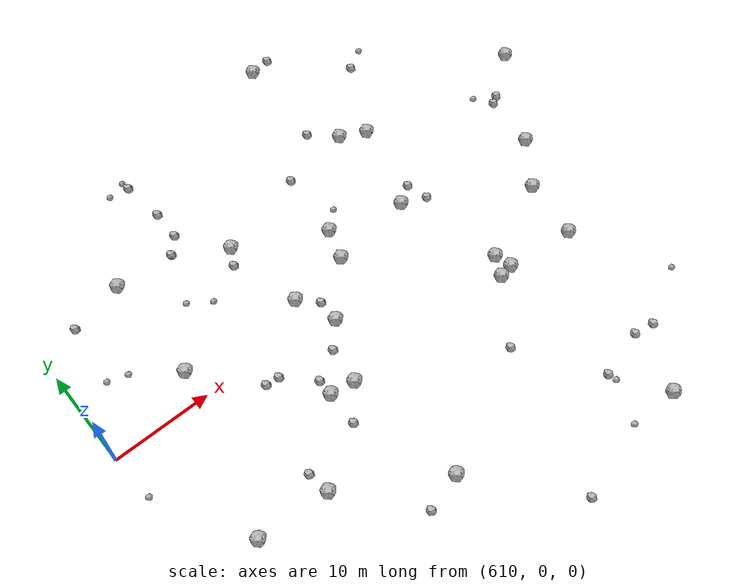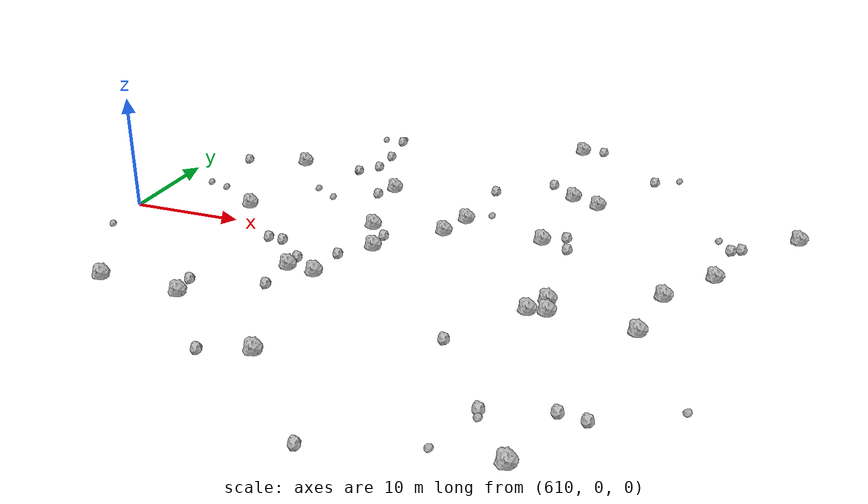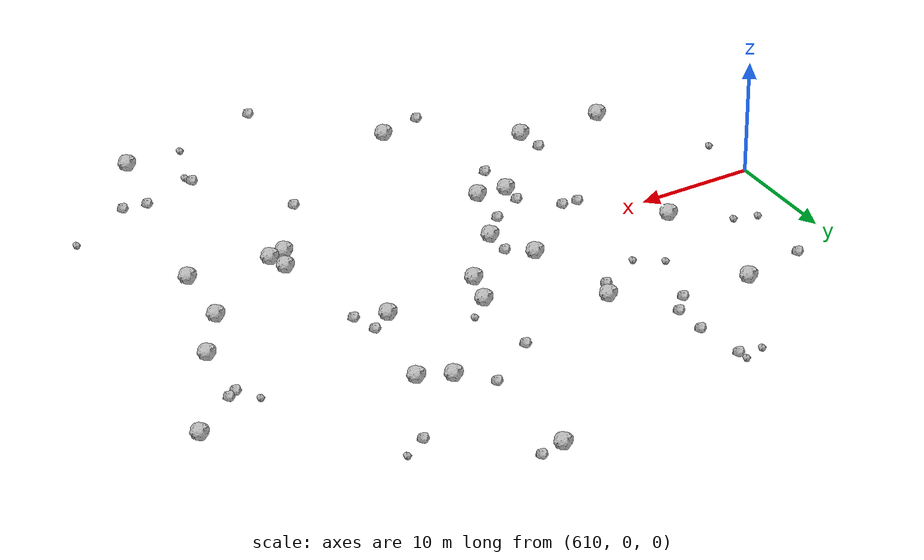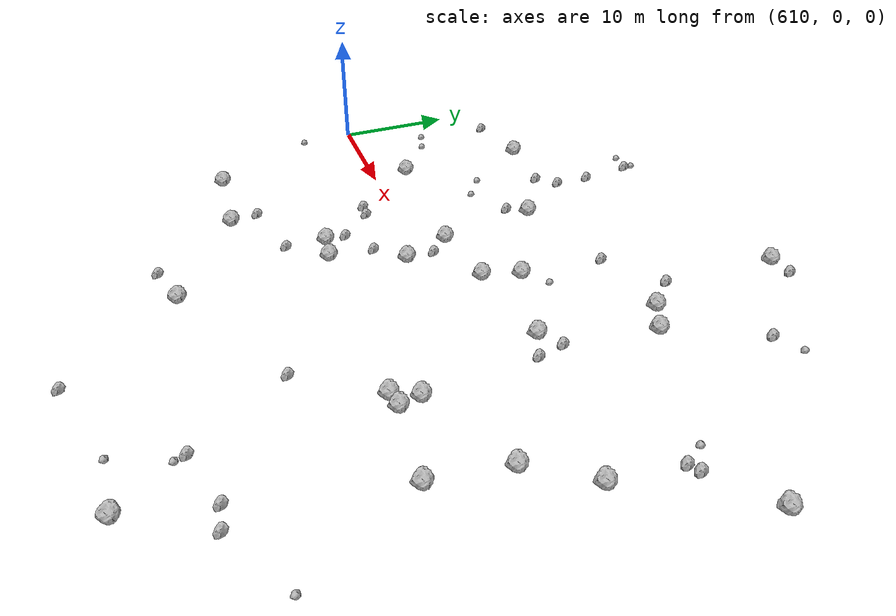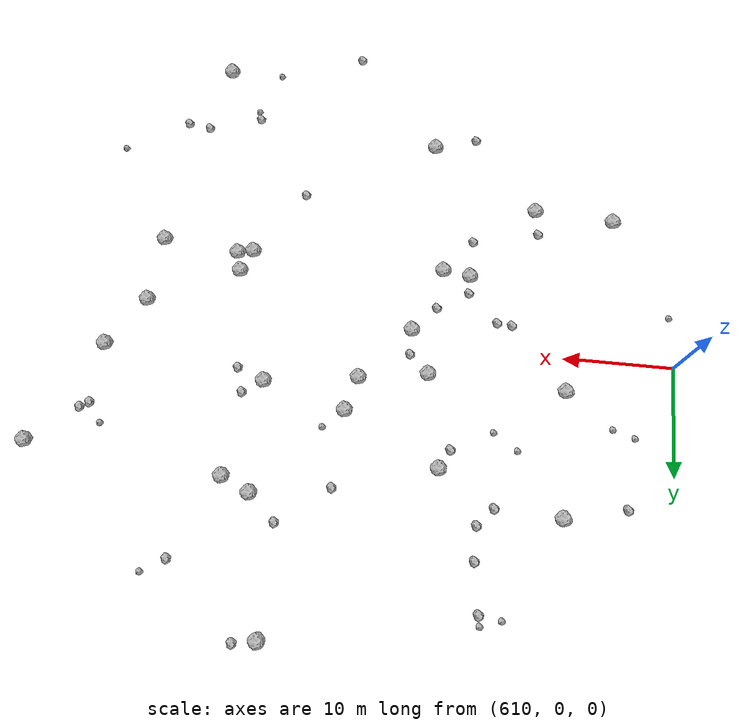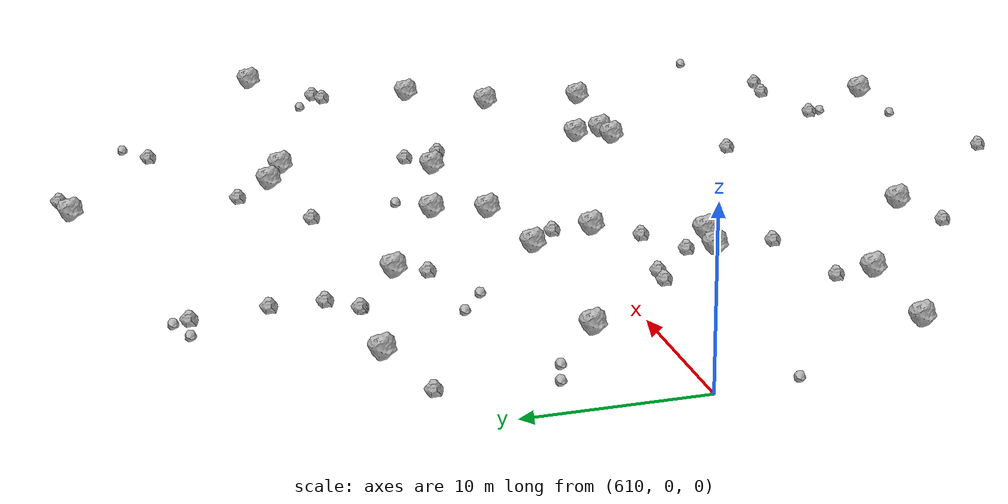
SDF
<sdf version="1.6">
 <world name="default">
  <include><uri>model://sun</uri></include>
  <model name="rock1_16_3">
   <include><uri>model://rock1</uri><pose>623.0338215678136 -14.136015884690957 0.5 0 0 0</pose></include>
  </model>
  <model name="rock1_16_4">
   <include><uri>model://rock1</uri><pose>650.4937964750682 -7.471354444372395 0.5 0 0 0</pose></include>
  </model>
  <model name="rock1_16_5">
   <include><uri>model://rock1</uri><pose>638.2456175181711 3.4544327840384597 0.5 0 0 0</pose></include>
  </model>
  <model name="rock1_16_6">
   <include><uri>model://rock1</uri><pose>661.3888281623242 2.4001621112177105 0.5 0 0 0</pose></include>
  </model>
  <model name="rock1_16_7">
   <include><uri>model://rock1</uri><pose>632.0456083960396 2.5756925605743533 0.5 0 0 0</pose></include>
  </model>
  <model name="rock1_16_8">
   <include><uri>model://rock1</uri><pose>619.6161174613522 14.33403416351058 0.5 0 0 0</pose></include>
  </model>
  <model name="rock1_16_9">
   <include><uri>model://rock1</uri><pose>615.7562683235511 -13.705546998408153 0.5 0 0 0</pose></include>
  </model>
  <model name="rock1_16_10">
   <include><uri>model://rock1</uri><pose>646.6682324697213 4.539323925893385 0.5 0 0 0</pose></include>
  </model>
  <model name="rock1_16_11">
   <include><uri>model://rock1</uri><pose>631.2893867720576 -7.429485246653414 0.5 0 0 0</pose></include>
  </model>
  <model name="rock1_16_12">
   <include><uri>model://rock1</uri><pose>650.0512383435115 -5.716809428722591 0.5 0 0 0</pose></include>
  </model>
  <model name="rock1_16_13">
   <include><uri>model://rock1</uri><pose>653.422399578715 -26.446879926752967 0.5 0 0 0</pose></include>
  </model>
  <model name="rock1_16_14">
   <include><uri>model://rock1</uri><pose>649.0583290089357 -7.744666688617844 0.5 0 0 0</pose></include>
  </model>
  <model name="rock1_16_15">
   <include><uri>model://rock1</uri><pose>657.4537446698811 -8.181294820619843 0.5 0 0 0</pose></include>
  </model>
  <model name="rock1_16_16">
   <include><uri>model://rock1</uri><pose>644.620239674446 26.674815669989613 0.5 0 0 0</pose></include>
  </model>
  <model name="rock1_16_17">
   <include><uri>model://rock1</uri><pose>658.1855339201877 -2.1362305233182184 0.5 0 0 0</pose></include>
  </model>
  <model name="rock1_16_18">
   <include><uri>model://rock1</uri><pose>639.1968923517832 6.542542912270193 0.5 0 0 0</pose></include>
  </model>
  <model name="rock1_16_19">
   <include><uri>model://rock1</uri><pose>646.766444139065 14.584664670528781 0.5 0 0 0</pose></include>
  </model>
  <model name="rock1_16_20">
   <include><uri>model://rock1</uri><pose>619.6926525802536 3.077556777520954 0.5 0 0 0</pose></include>
  </model>
  <model name="rock1_16_21">
   <include><uri>model://rock1</uri><pose>630.5551041916228 10.984302094730168 0.5 0 0 0</pose></include>
  </model>
  <model name="rock1_16_22">
   <include><uri>model://rock1</uri><pose>649.3307669903058 13.343346690227499 0.5 0 0 0</pose></include>
  </model>
  <model name="rock1_16_23">
   <include><uri>model://rock1</uri><pose>628.8061405221157 -7.081031175289041 0.5 0 0 0</pose></include>
  </model>
  <model name="rock1_16_24">
   <include><uri>model://rock1</uri><pose>632.827282518301 -19.97131588755747 0.5 0 0 0</pose></include>
  </model>
  <model name="rock1_16_25">
   <include><uri>model://rock1</uri><pose>633.7739099505814 -1.4258324182997413 0.5 0 0 0</pose></include>
  </model>
  <model name="rock1_16_26">
   <include><uri>model://rock1</uri><pose>666.994468564758 11.792882025182912 0.5 0 0 0</pose></include>
  </model>
  <model name="rock2_16_0">
   <include><uri>model://rock2</uri><pose>640.7062482422189 -28.95483650521774 0.3 0 0 0</pose></include>
  </model>
  <model name="rock2_16_1">
   <include><uri>model://rock2</uri><pose>649.9633762229336 -21.4850491030617 0.3 0 0 0</pose></include>
  </model>
  <model name="rock2_16_2">
   <include><uri>model://rock2</uri><pose>626.0546911184676 -2.743533672799984 0.3 0 0 0</pose></include>
  </model>
  <model name="rock2_16_3">
   <include><uri>model://rock2</uri><pose>622.6596351065039 -11.809439092157486 0.3 0 0 0</pose></include>
  </model>
  <model name="rock2_16_4">
   <include><uri>model://rock2</uri><pose>646.6632273590395 27.06187304639011 0.3 0 0 0</pose></include>
  </model>
  <model name="rock2_16_5">
   <include><uri>model://rock2</uri><pose>631.6332601730254 -3.6935816148350114 0.3 0 0 0</pose></include>
  </model>
  <model name="rock2_16_6">
   <include><uri>model://rock2</uri><pose>633.7612338747882 0.9038699784432929 0.3 0 0 0</pose></include>
  </model>
  <model name="rock2_16_7">
   <include><uri>model://rock2</uri><pose>626.991181868097 18.640457948398968 0.3 0 0 0</pose></include>
  </model>
  <model name="rock2_16_8">
   <include><uri>model://rock2</uri><pose>639.6652956159119 13.537675287516407 0.3 0 0 0</pose></include>
  </model>
  <model name="rock2_16_9">
   <include><uri>model://rock2</uri><pose>653.0603007818017 20.779858546793477 0.3 0 0 0</pose></include>
  </model>
  <model name="rock2_16_10">
   <include><uri>model://rock2</uri><pose>661.8575329309283 7.941647276405575 0.3 0 0 0</pose></include>
  </model>
  <model name="rock2_16_11">
   <include><uri>model://rock2</uri><pose>626.9685281172353 15.623653030217682 0.3 0 0 0</pose></include>
  </model>
  <model name="rock2_16_12">
   <include><uri>model://rock2</uri><pose>656.8522277194063 -20.40258779392147 0.3 0 0 0</pose></include>
  </model>
  <model name="rock2_16_13">
   <include><uri>model://rock2</uri><pose>644.7303288855322 -13.847305926543239 0.3 0 0 0</pose></include>
  </model>
  <model name="rock2_16_14">
   <include><uri>model://rock2</uri><pose>629.5938707961128 9.293424106588098 0.3 0 0 0</pose></include>
  </model>
  <model name="rock2_16_15">
   <include><uri>model://rock2</uri><pose>625.5277429861802 14.045664785121389 0.3 0 0 0</pose></include>
  </model>
  <model name="rock2_16_16">
   <include><uri>model://rock2</uri><pose>654.8072804909029 -20.08883461510095 0.3 0 0 0</pose></include>
  </model>
  <model name="rock2_16_17">
   <include><uri>model://rock2</uri><pose>649.1042115843015 3.552426767998618 0.3 0 0 0</pose></include>
  </model>
  <model name="rock2_16_18">
   <include><uri>model://rock2</uri><pose>628.7791570504951 -5.380691883567657 0.3 0 0 0</pose></include>
  </model>
  <model name="rock2_16_19">
   <include><uri>model://rock2</uri><pose>644.3003769056035 16.929496084270923 0.3 0 0 0</pose></include>
  </model>
  <model name="rock2_16_20">
   <include><uri>model://rock2</uri><pose>624.7013023773331 -2.6255050512776776 0.3 0 0 0</pose></include>
  </model>
  <model name="rock2_16_21">
   <include><uri>model://rock2</uri><pose>626.4089031950689 22.9767201149494 0.3 0 0 0</pose></include>
  </model>
  <model name="rock2_16_22">
   <include><uri>model://rock2</uri><pose>628.6722789767294 -10.499460572718395 0.3 0 0 0</pose></include>
  </model>
  <model name="rock2_16_23">
   <include><uri>model://rock2</uri><pose>628.9734039924447 -21.069155016299703 0.3 0 0 0</pose></include>
  </model>
  <model name="rock2_16_24">
   <include><uri>model://rock2</uri><pose>648.4819019965482 5.775254748340316 0.3 0 0 0</pose></include>
  </model>
  <model name="rock2_16_25">
   <include><uri>model://rock2</uri><pose>614.0022960945657 13.114763289868975 0.3 0 0 0</pose></include>
  </model>
  <model name="rock2_16_26">
   <include><uri>model://rock2</uri><pose>662.6653837117872 8.431759356406097 0.3 0 0 0</pose></include>
  </model>
  <model name="rock3_16_0">
   <include><uri>model://rock3</uri><pose>662.5441865359729 -17.278773862083284 0.2 0 0 0</pose></include>
  </model>
  <model name="rock3_16_1">
   <include><uri>model://rock3</uri><pose>650.1734277567401 -22.349804941743443 0.2 0 0 0</pose></include>
  </model>
  <model name="rock3_16_2">
   <include><uri>model://rock3</uri><pose>626.2462274561223 23.822399056777527 0.2 0 0 0</pose></include>
  </model>
  <model name="rock3_16_3">
   <include><uri>model://rock3</uri><pose>624.4056636225959 23.228943294365607 0.2 0 0 0</pose></include>
  </model>
  <model name="rock3_16_4">
   <include><uri>model://rock3</uri><pose>640.9734104792867 8.211814270106437 0.2 0 0 0</pose></include>
  </model>
  <model name="rock3_16_5">
   <include><uri>model://rock3</uri><pose>613.431636533221 6.748802853226451 0.2 0 0 0</pose></include>
  </model>
  <model name="rock3_16_6">
   <include><uri>model://rock3</uri><pose>610.4373866060484 -4.705214838520675 0.2 0 0 0</pose></include>
  </model>
  <model name="rock3_16_7">
   <include><uri>model://rock3</uri><pose>655.1340707318723 22.018534388157413 0.2 0 0 0</pose></include>
  </model>
  <model name="rock3_16_8">
   <include><uri>model://rock3</uri><pose>615.3882575553976 6.13946262727255 0.2 0 0 0</pose></include>
  </model>
  <model name="rock3_16_9">
   <include><uri>model://rock3</uri><pose>625.8525789070627 7.359377381013232 0.2 0 0 0</pose></include>
  </model>
  <model name="rock3_16_10">
   <include><uri>model://rock3</uri><pose>623.6927432868553 8.801339350692366 0.2 0 0 0</pose></include>
  </model>
  <model name="rock3_16_11">
   <include><uri>model://rock3</uri><pose>625.4182749716451 13.892470066153628 0.2 0 0 0</pose></include>
  </model>
  <model name="rock3_16_12">
   <include><uri>model://rock3</uri><pose>660.6094226474761 9.664977046680256 0.2 0 0 0</pose></include>
  </model>
  <model name="rock3_16_13">
   <include><uri>model://rock3</uri><pose>648.4429645991851 -26.481518101471234 0.2 0 0 0</pose></include>
  </model>
 </world>
</sdf>
